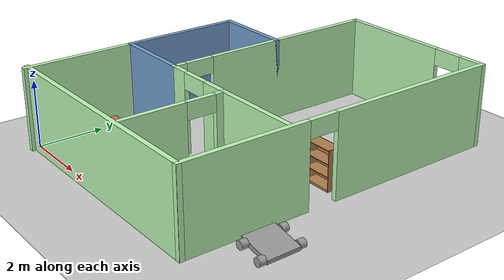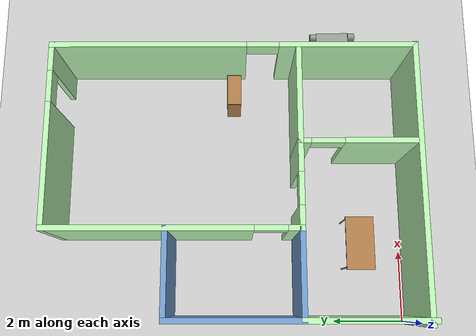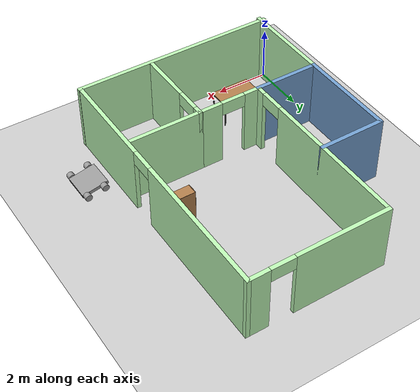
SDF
<sdf version="1.6">
 <world name="default">
  <model name="ground_plane">
   <static>1</static>
   <link name="link">
    <collision name="collision">
     <geometry><plane><normal>0 0 1</normal><size>100 100</size></plane></geometry>
     <surface>
      <contact><collide_bitmask>65535</collide_bitmask></contact>
      <friction><ode><mu>100</mu><mu2>50</mu2></ode></friction>
     </surface>
    </collision>
    <visual name="visual">
     <cast_shadows>0</cast_shadows>
     <geometry><plane><normal>0 0 1</normal><size>100 100</size></plane></geometry>
     <material>
      <script><uri>file://media/materials/scripts/gazebo.material</uri><name>Gazebo/Grey</name></script>
     </material>
    </visual>
   </link>
  </model>
  <model name="table_3">
   <static>1</static>
   <link name="link">
    <collision name="surface">
     <pose>0 0 1 0 -0 0</pose>
     <geometry><box><size>1.5 0.8 0.03</size></box></geometry>
     <surface><friction><ode><mu>0.6</mu><mu2>0.6</mu2></ode></friction></surface>
    </collision>
    <visual name="visual1">
     <pose>0 0 1 0 -0 0</pose>
     <geometry><box><size>1.5 0.8 0.03</size></box></geometry>
     <material>
      <script><uri>file://media/materials/scripts/gazebo.material</uri><name>Gazebo/Wood</name></script>
     </material>
    </visual>
    <collision name="front_left_leg">
     <pose>0.68 0.38 0.5 0 -0 0</pose>
     <geometry><cylinder><radius>0.02</radius><length>1</length></cylinder></geometry>
    </collision>
    <visual name="front_left_leg">
     <pose>0.68 0.38 0.5 0 -0 0</pose>
     <geometry><cylinder><radius>0.02</radius><length>1</length></cylinder></geometry>
     <material>
      <script><uri>file://media/materials/scripts/gazebo.material</uri><name>Gazebo/Grey</name></script>
     </material>
    </visual>
    <collision name="front_right_leg">
     <pose>0.68 -0.38 0.5 0 -0 0</pose>
     <geometry><cylinder><radius>0.02</radius><length>1</length></cylinder></geometry>
    </collision>
    <visual name="front_right_leg">
     <pose>0.68 -0.38 0.5 0 -0 0</pose>
     <geometry><cylinder><radius>0.02</radius><length>1</length></cylinder></geometry>
     <material>
      <script><uri>file://media/materials/scripts/gazebo.material</uri><name>Gazebo/Grey</name></script>
     </material>
    </visual>
    <collision name="back_right_leg">
     <pose>-0.68 -0.38 0.5 0 -0 0</pose>
     <geometry><cylinder><radius>0.02</radius><length>1</length></cylinder></geometry>
    </collision>
    <visual name="back_right_leg">
     <pose>-0.68 -0.38 0.5 0 -0 0</pose>
     <geometry><cylinder><radius>0.02</radius><length>1</length></cylinder></geometry>
     <material>
      <script><uri>file://media/materials/scripts/gazebo.material</uri><name>Gazebo/Grey</name></script>
     </material>
    </visual>
    <collision name="back_left_leg">
     <pose>-0.68 0.38 0.5 0 -0 0</pose>
     <geometry><cylinder><radius>0.02</radius><length>1</length></cylinder></geometry>
    </collision>
    <visual name="back_left_leg">
     <pose>-0.68 0.38 0.5 0 -0 0</pose>
     <geometry><cylinder><radius>0.02</radius><length>1</length></cylinder></geometry>
     <material>
      <script><uri>file://media/materials/scripts/gazebo.material</uri><name>Gazebo/Grey</name></script>
     </material>
    </visual>
   </link>
   <pose>2.18621 1.32854 0 0 -0 0</pose>
  </model>
  <model name="bookshelf">
   <static>1</static>
   <link name="link">
    <inertial><mass>1</mass></inertial>
    <collision name="back">
     <pose>0 0.005 0.6 0 -0 0</pose>
     <geometry><box><size>0.9 0.01 1.2</size></box></geometry>
    </collision>
    <visual name="visual1">
     <pose>0 0.005 0.6 0 -0 0</pose>
     <geometry><box><size>0.9 0.01 1.2</size></box></geometry>
     <material>
      <script><uri>file://media/materials/scripts/gazebo.material</uri><name>Gazebo/Wood</name></script>
     </material>
    </visual>
    <collision name="left_side">
     <pose>0.45 -0.195 0.6 0 -0 0</pose>
     <geometry><box><size>0.02 0.4 1.2</size></box></geometry>
    </collision>
    <visual name="visual2">
     <pose>0.45 -0.195 0.6 0 -0 0</pose>
     <geometry><box><size>0.02 0.4 1.2</size></box></geometry>
     <material>
      <script><uri>file://media/materials/scripts/gazebo.material</uri><name>Gazebo/Wood</name></script>
     </material>
    </visual>
    <collision name="right_side">
     <pose>-0.45 -0.195 0.6 0 -0 0</pose>
     <geometry><box><size>0.02 0.4 1.2</size></box></geometry>
    </collision>
    <visual name="visual3">
     <pose>-0.45 -0.195 0.6 0 -0 0</pose>
     <geometry><box><size>0.02 0.4 1.2</size></box></geometry>
     <material>
      <script><uri>file://media/materials/scripts/gazebo.material</uri><name>Gazebo/Wood</name></script>
     </material>
    </visual>
    <collision name="bottom">
     <pose>0 -0.195 0.03 0 -0 0</pose>
     <geometry><box><size>0.88 0.4 0.06</size></box></geometry>
    </collision>
    <visual name="visual4">
     <pose>0 -0.195 0.03 0 -0 0</pose>
     <geometry><box><size>0.88 0.4 0.06</size></box></geometry>
     <material>
      <script><uri>file://media/materials/scripts/gazebo.material</uri><name>Gazebo/Wood</name></script>
     </material>
    </visual>
    <collision name="top">
     <pose>0 -0.195 1.19 0 -0 0</pose>
     <geometry><box><size>0.88 0.4 0.02</size></box></geometry>
    </collision>
    <visual name="visual5">
     <pose>0 -0.195 1.19 0 -0 0</pose>
     <geometry><box><size>0.88 0.4 0.02</size></box></geometry>
     <material>
      <script><uri>file://media/materials/scripts/gazebo.material</uri><name>Gazebo/Wood</name></script>
     </material>
    </visual>
    <collision name="low_shelf">
     <pose>0 -0.195 0.43 0 -0 0</pose>
     <geometry><box><size>0.88 0.4 0.02</size></box></geometry>
    </collision>
    <visual name="visual6">
     <pose>0 -0.195 0.43 0 -0 0</pose>
     <geometry><box><size>0.88 0.4 0.02</size></box></geometry>
     <material>
      <script><uri>file://media/materials/scripts/gazebo.material</uri><name>Gazebo/Wood</name></script>
     </material>
    </visual>
    <collision name="high_shelf">
     <pose>0 -0.195 0.8 0 -0 0</pose>
     <geometry><box><size>0.88 0.4 0.02</size></box></geometry>
    </collision>
    <visual name="visual7">
     <pose>0 -0.195 0.8 0 -0 0</pose>
     <geometry><box><size>0.88 0.4 0.02</size></box></geometry>
     <material>
      <script><uri>file://media/materials/scripts/gazebo.material</uri><name>Gazebo/Wood</name></script>
     </material>
    </visual>
   </link>
   <pose>6.68171 5.08429 0 0 -0 0</pose>
  </model>
  <model name="robot_base">
   <link name="link_3">
    <inertial>
     <mass>1</mass>
     <inertia><ixx>0.145833</ixx><ixy>0</ixy><ixz>0</ixz><iyy>0.145833</iyy><iyz>0</iyz><izz>0.125</izz></inertia>
    </inertial>
    <pose>0.346702 -0.600418 0 0 -0 0</pose>
    <visual name="visual">
     <pose>0 0 0 1.5708 -0 0</pose>
     <geometry><cylinder><radius>0.125</radius><length>0.2</length></cylinder></geometry>
     <material>
      <lighting>1</lighting>
      <script><uri>file://media/materials/scripts/gazebo.material</uri><name>Gazebo/Grey</name></script>
      <shader type="pixel"><normal_map>__default__</normal_map></shader>
      <ambient>0.3 0.3 0.3 1</ambient>
      <diffuse>0.7 0.7 0.7 1</diffuse>
      <specular>0.01 0.01 0.01 1</specular>
      <emissive>0 0 0 1</emissive>
     </material>
    </visual>
    <collision name="collision">
     <pose>0 0 0 1.5708 -0 0</pose>
     <geometry><cylinder><radius>0.125</radius><length>0.2</length></cylinder></geometry>
     <surface>
      <friction>
       <ode><mu>1</mu><mu2>1</mu2><fdir1>0 0 0</fdir1><slip1>0</slip1><slip2>0</slip2></ode>
       <torsional>
        <coefficient>1</coefficient>
        <patch_radius>0</patch_radius>
        <surface_radius>0</surface_radius>
        <use_patch_radius>1</use_patch_radius>
        <ode><slip>0</slip></ode>
       </torsional>
      </friction>
      <bounce><restitution_coefficient>0</restitution_coefficient><threshold>1e+06</threshold></bounce>
      <contact>
       <collide_without_contact>0</collide_without_contact>
       <collide_without_contact_bitmask>1</collide_without_contact_bitmask>
       <collide_bitmask>1</collide_bitmask>
       <ode>
        <soft_cfm>0</soft_cfm>
        <soft_erp>0.2</soft_erp>
        <kp>1e+13</kp>
        <kd>1</kd>
        <max_vel>0.01</max_vel>
        <min_depth>0</min_depth>
       </ode>
       <bullet>
        <split_impulse>1</split_impulse>
        <split_impulse_penetration_threshold>-0.01</split_impulse_penetration_threshold>
        <soft_cfm>0</soft_cfm>
        <soft_erp>0.2</soft_erp>
        <kp>1e+13</kp>
        <kd>1</kd>
       </bullet>
      </contact>
     </surface>
    </collision>
   </link>
   <link name="link_3_clone">
    <inertial>
     <mass>1</mass>
     <inertia><ixx>0.145833</ixx><ixy>0</ixy><ixz>0</ixz><iyy>0.145833</iyy><iyz>0</iyz><izz>0.125</izz></inertia>
    </inertial>
    <pose>-0.327306 -0.599569 0 0 -0 0</pose>
    <visual name="visual">
     <pose>0 0 0 1.5708 -0 0</pose>
     <geometry><cylinder><radius>0.125</radius><length>0.2</length></cylinder></geometry>
     <material>
      <lighting>1</lighting>
      <script><uri>file://media/materials/scripts/gazebo.material</uri><name>Gazebo/Grey</name></script>
      <shader type="pixel"><normal_map>__default__</normal_map></shader>
      <ambient>0.3 0.3 0.3 1</ambient>
      <diffuse>0.7 0.7 0.7 1</diffuse>
      <specular>0.01 0.01 0.01 1</specular>
      <emissive>0 0 0 1</emissive>
     </material>
    </visual>
    <collision name="collision">
     <pose>0 0 0 1.5708 -0 0</pose>
     <geometry><cylinder><radius>0.125</radius><length>0.2</length></cylinder></geometry>
     <surface>
      <friction>
       <ode><mu>1</mu><mu2>1</mu2><fdir1>0 0 0</fdir1><slip1>0</slip1><slip2>0</slip2></ode>
       <torsional>
        <coefficient>1</coefficient>
        <patch_radius>0</patch_radius>
        <surface_radius>0</surface_radius>
        <use_patch_radius>1</use_patch_radius>
        <ode><slip>0</slip></ode>
       </torsional>
      </friction>
      <bounce><restitution_coefficient>0</restitution_coefficient><threshold>1e+06</threshold></bounce>
      <contact>
       <collide_without_contact>0</collide_without_contact>
       <collide_without_contact_bitmask>1</collide_without_contact_bitmask>
       <collide_bitmask>1</collide_bitmask>
       <ode>
        <soft_cfm>0</soft_cfm>
        <soft_erp>0.2</soft_erp>
        <kp>1e+13</kp>
        <kd>1</kd>
        <max_vel>0.01</max_vel>
        <min_depth>0</min_depth>
       </ode>
       <bullet>
        <split_impulse>1</split_impulse>
        <split_impulse_penetration_threshold>-0.01</split_impulse_penetration_threshold>
        <soft_cfm>0</soft_cfm>
        <soft_erp>0.2</soft_erp>
        <kp>1e+13</kp>
        <kd>1</kd>
       </bullet>
      </contact>
     </surface>
    </collision>
   </link>
   <link name="link_3_clone_0">
    <inertial>
     <mass>1</mass>
     <inertia><ixx>0.145833</ixx><ixy>0</ixy><ixz>0</ixz><iyy>0.145833</iyy><iyz>0</iyz><izz>0.125</izz></inertia>
    </inertial>
    <pose>-0.327588 0.600462 0 0 -0 0</pose>
    <visual name="visual">
     <pose>0 0 0 1.5708 -0 0</pose>
     <geometry><cylinder><radius>0.125</radius><length>0.2</length></cylinder></geometry>
     <material>
      <lighting>1</lighting>
      <script><uri>file://media/materials/scripts/gazebo.material</uri><name>Gazebo/Grey</name></script>
      <shader type="pixel"><normal_map>__default__</normal_map></shader>
      <ambient>0.3 0.3 0.3 1</ambient>
      <diffuse>0.7 0.7 0.7 1</diffuse>
      <specular>0.01 0.01 0.01 1</specular>
      <emissive>0 0 0 1</emissive>
     </material>
    </visual>
    <collision name="collision">
     <pose>0 0 0 1.5708 -0 0</pose>
     <geometry><cylinder><radius>0.125</radius><length>0.2</length></cylinder></geometry>
     <surface>
      <friction>
       <ode><mu>1</mu><mu2>1</mu2><fdir1>0 0 0</fdir1><slip1>0</slip1><slip2>0</slip2></ode>
       <torsional>
        <coefficient>1</coefficient>
        <patch_radius>0</patch_radius>
        <surface_radius>0</surface_radius>
        <use_patch_radius>1</use_patch_radius>
        <ode><slip>0</slip></ode>
       </torsional>
      </friction>
      <bounce><restitution_coefficient>0</restitution_coefficient><threshold>1e+06</threshold></bounce>
      <contact>
       <collide_without_contact>0</collide_without_contact>
       <collide_without_contact_bitmask>1</collide_without_contact_bitmask>
       <collide_bitmask>1</collide_bitmask>
       <ode>
        <soft_cfm>0</soft_cfm>
        <soft_erp>0.2</soft_erp>
        <kp>1e+13</kp>
        <kd>1</kd>
        <max_vel>0.01</max_vel>
        <min_depth>0</min_depth>
       </ode>
       <bullet>
        <split_impulse>1</split_impulse>
        <split_impulse_penetration_threshold>-0.01</split_impulse_penetration_threshold>
        <soft_cfm>0</soft_cfm>
        <soft_erp>0.2</soft_erp>
        <kp>1e+13</kp>
        <kd>1</kd>
       </bullet>
      </contact>
     </surface>
    </collision>
   </link>
   <link name="link_3_clone_1">
    <inertial>
     <mass>1</mass>
     <inertia><ixx>0.145833</ixx><ixy>0</ixy><ixz>0</ixz><iyy>0.145833</iyy><iyz>0</iyz><izz>0.125</izz></inertia>
    </inertial>
    <pose>0.3334 0.598662 0 0 -0 0</pose>
    <visual name="visual">
     <pose>0 0 0 1.5708 -0 0</pose>
     <geometry><cylinder><radius>0.125</radius><length>0.2</length></cylinder></geometry>
     <material>
      <lighting>1</lighting>
      <script><uri>file://media/materials/scripts/gazebo.material</uri><name>Gazebo/Grey</name></script>
      <shader type="pixel"><normal_map>__default__</normal_map></shader>
      <ambient>0.3 0.3 0.3 1</ambient>
      <diffuse>0.7 0.7 0.7 1</diffuse>
      <specular>0.01 0.01 0.01 1</specular>
      <emissive>0 0 0 1</emissive>
     </material>
    </visual>
    <collision name="collision">
     <pose>0 0 0 1.5708 -0 0</pose>
     <geometry><cylinder><radius>0.125</radius><length>0.2</length></cylinder></geometry>
     <surface>
      <friction>
       <ode><mu>1</mu><mu2>1</mu2><fdir1>0 0 0</fdir1><slip1>0</slip1><slip2>0</slip2></ode>
       <torsional>
        <coefficient>1</coefficient>
        <patch_radius>0</patch_radius>
        <surface_radius>0</surface_radius>
        <use_patch_radius>1</use_patch_radius>
        <ode><slip>0</slip></ode>
       </torsional>
      </friction>
      <bounce><restitution_coefficient>0</restitution_coefficient><threshold>1e+06</threshold></bounce>
      <contact>
       <collide_without_contact>0</collide_without_contact>
       <collide_without_contact_bitmask>1</collide_without_contact_bitmask>
       <collide_bitmask>1</collide_bitmask>
       <ode>
        <soft_cfm>0</soft_cfm>
        <soft_erp>0.2</soft_erp>
        <kp>1e+13</kp>
        <kd>1</kd>
        <max_vel>0.01</max_vel>
        <min_depth>0</min_depth>
       </ode>
       <bullet>
        <split_impulse>1</split_impulse>
        <split_impulse_penetration_threshold>-0.01</split_impulse_penetration_threshold>
        <soft_cfm>0</soft_cfm>
        <soft_erp>0.2</soft_erp>
        <kp>1e+13</kp>
        <kd>1</kd>
       </bullet>
      </contact>
     </surface>
    </collision>
   </link>
   <link name="link_4">
    <inertial>
     <mass>1</mass>
     <inertia>
      <ixx>0.166667</ixx>
      <ixy>0</ixy>
      <ixz>0</ixz>
      <iyy>0.166667</iyy>
      <iyz>0</iyz>
      <izz>0.166667</izz>
     </inertia>
    </inertial>
    <pose>-0.025208 0.000862 0 0 -0 0</pose>
    <visual name="visual">
     <geometry><box><size>1 1 0.125</size></box></geometry>
     <material>
      <lighting>1</lighting>
      <script><uri>file://media/materials/scripts/gazebo.material</uri><name>Gazebo/Grey</name></script>
      <shader type="pixel"><normal_map>__default__</normal_map></shader>
      <ambient>0.3 0.3 0.3 1</ambient>
      <diffuse>0.7 0.7 0.7 1</diffuse>
      <specular>0.01 0.01 0.01 1</specular>
      <emissive>0 0 0 1</emissive>
     </material>
    </visual>
    <collision name="collision">
     <geometry><box><size>1 1 0.125</size></box></geometry>
     <surface>
      <friction>
       <ode><mu>1</mu><mu2>1</mu2><fdir1>0 0 0</fdir1><slip1>0</slip1><slip2>0</slip2></ode>
       <torsional>
        <coefficient>1</coefficient>
        <patch_radius>0</patch_radius>
        <surface_radius>0</surface_radius>
        <use_patch_radius>1</use_patch_radius>
        <ode><slip>0</slip></ode>
       </torsional>
      </friction>
      <bounce><restitution_coefficient>0</restitution_coefficient><threshold>1e+06</threshold></bounce>
      <contact>
       <collide_without_contact>0</collide_without_contact>
       <collide_without_contact_bitmask>1</collide_without_contact_bitmask>
       <collide_bitmask>1</collide_bitmask>
       <ode>
        <soft_cfm>0</soft_cfm>
        <soft_erp>0.2</soft_erp>
        <kp>1e+13</kp>
        <kd>1</kd>
        <max_vel>0.01</max_vel>
        <min_depth>0</min_depth>
       </ode>
       <bullet>
        <split_impulse>1</split_impulse>
        <split_impulse_penetration_threshold>-0.01</split_impulse_penetration_threshold>
        <soft_cfm>0</soft_cfm>
        <soft_erp>0.2</soft_erp>
        <kp>1e+13</kp>
        <kd>1</kd>
       </bullet>
      </contact>
     </surface>
    </collision>
   </link>
   <joint name="link_4_JOINT_0" type="revolute">
    <parent>link_4</parent>
    <child>link_3</child>
    <axis>
     <xyz>0 1 0</xyz>
     <use_parent_model_frame>0</use_parent_model_frame>
     <limit>
      <lower>-1.79769e+308</lower>
      <upper>1.79769e+308</upper>
      <effort>-1</effort>
      <velocity>-1</velocity>
     </limit>
     <dynamics>
      <spring_reference>0</spring_reference>
      <spring_stiffness>0</spring_stiffness>
      <damping>0</damping>
     </dynamics>
    </axis>
    <physics>
     <ode><limit><cfm>0</cfm><erp>0.2</erp></limit><suspension><cfm>0</cfm><erp>0.2</erp></suspension></ode>
    </physics>
   </joint>
   <joint name="link_4_JOINT_1" type="revolute">
    <parent>link_4</parent>
    <child>link_3_clone</child>
    <axis>
     <xyz>0 1 0</xyz>
     <use_parent_model_frame>0</use_parent_model_frame>
     <limit>
      <lower>-1.79769e+308</lower>
      <upper>1.79769e+308</upper>
      <effort>-1</effort>
      <velocity>-1</velocity>
     </limit>
     <dynamics>
      <spring_reference>0</spring_reference>
      <spring_stiffness>0</spring_stiffness>
      <damping>0</damping>
     </dynamics>
    </axis>
    <physics>
     <ode><limit><cfm>0</cfm><erp>0.2</erp></limit><suspension><cfm>0</cfm><erp>0.2</erp></suspension></ode>
    </physics>
   </joint>
   <joint name="link_4_JOINT_3" type="revolute">
    <parent>link_4</parent>
    <child>link_3_clone_1</child>
    <axis>
     <xyz>0 1 0</xyz>
     <use_parent_model_frame>0</use_parent_model_frame>
     <limit>
      <lower>-1.79769e+308</lower>
      <upper>1.79769e+308</upper>
      <effort>-1</effort>
      <velocity>-1</velocity>
     </limit>
     <dynamics>
      <spring_reference>0</spring_reference>
      <spring_stiffness>0</spring_stiffness>
      <damping>0</damping>
     </dynamics>
    </axis>
    <physics>
     <ode><limit><cfm>0</cfm><erp>0.2</erp></limit><suspension><cfm>0</cfm><erp>0.2</erp></suspension></ode>
    </physics>
   </joint>
   <joint name="link_4_JOINT_4" type="revolute">
    <parent>link_4</parent>
    <child>link_3_clone_0</child>
    <axis>
     <xyz>0 1 0</xyz>
     <use_parent_model_frame>0</use_parent_model_frame>
     <limit>
      <lower>-1.79769e+308</lower>
      <upper>1.79769e+308</upper>
      <effort>-1</effort>
      <velocity>-1</velocity>
     </limit>
     <dynamics>
      <spring_reference>0</spring_reference>
      <spring_stiffness>0</spring_stiffness>
      <damping>0</damping>
     </dynamics>
    </axis>
    <physics>
     <ode><limit><cfm>0</cfm><erp>0.2</erp></limit><suspension><cfm>0</cfm><erp>0.2</erp></suspension></ode>
    </physics>
   </joint>
   <static>0</static>
   <pose>8.47524 1.77585 0.190915 3e-06 0.19129 0.007312</pose>
  </model>
  <model name="Kanaloa_Lab_v2">
   <pose>3.77022 4.85008 0 0 -0 0</pose>
   <link name="Wall_11">
    <pose>-0.155222 -1.75008 0 0 -0 0</pose>
    <visual name="Wall_11_Visual_0">
     <pose>-0.911457 0 1.25 0 -0 0</pose>
     <geometry><box><size>0.677085 0.15 2.5</size></box></geometry>
     <material>
      <script><uri>file://media/materials/scripts/gazebo.material</uri><name>Gazebo/Grey</name></script>
      <ambient>0.741176 0.972549 0.709804 1</ambient>
     </material>
     <meta><layer>0</layer></meta>
    </visual>
    <collision name="Wall_11_Collision_0">
     <geometry><box><size>0.677085 0.15 2.5</size></box></geometry>
     <pose>-0.911457 0 1.25 0 -0 0</pose>
    </collision>
    <visual name="Wall_11_Visual_1">
     <pose>0.788543 0 1.25 0 -0 0</pose>
     <geometry><box><size>0.922915 0.15 2.5</size></box></geometry>
     <material>
      <script><uri>file://media/materials/scripts/gazebo.material</uri><name>Gazebo/Grey</name></script>
      <ambient>0.741176 0.972549 0.709804 1</ambient>
     </material>
     <meta><layer>0</layer></meta>
    </visual>
    <collision name="Wall_11_Collision_1">
     <geometry><box><size>0.922915 0.15 2.5</size></box></geometry>
     <pose>0.788543 0 1.25 0 -0 0</pose>
    </collision>
    <visual name="Wall_11_Visual_2">
     <pose>-0.122915 0 2.25 0 -0 0</pose>
     <geometry><box><size>0.9 0.15 0.5</size></box></geometry>
     <material>
      <script><uri>file://media/materials/scripts/gazebo.material</uri><name>Gazebo/Grey</name></script>
      <ambient>0.741176 0.972549 0.709804 1</ambient>
     </material>
     <meta><layer>0</layer></meta>
    </visual>
    <collision name="Wall_11_Collision_2">
     <geometry><box><size>0.9 0.15 0.5</size></box></geometry>
     <pose>-0.122915 0 2.25 0 -0 0</pose>
    </collision>
   </link>
   <link name="Wall_12">
    <pose>1.01978 -3.30008 0 0 -0 -1.5708</pose>
    <visual name="Wall_12_Visual_0">
     <pose>-1.44127 0 1.25 0 -0 0</pose>
     <geometry><box><size>0.367459 0.15 2.5</size></box></geometry>
     <material>
      <script><uri>file://media/materials/scripts/gazebo.material</uri><name>Gazebo/Grey</name></script>
      <ambient>0.741176 0.972549 0.709804 1</ambient>
     </material>
     <meta><layer>0</layer></meta>
    </visual>
    <collision name="Wall_12_Collision_0">
     <geometry><box><size>0.367459 0.15 2.5</size></box></geometry>
     <pose>-1.44127 0 1.25 0 -0 0</pose>
    </collision>
    <visual name="Wall_12_Visual_1">
     <pose>0.63373 0 1.25 0 -0 0</pose>
     <geometry><box><size>1.98254 0.15 2.5</size></box></geometry>
     <material>
      <script><uri>file://media/materials/scripts/gazebo.material</uri><name>Gazebo/Grey</name></script>
      <ambient>0.741176 0.972549 0.709804 1</ambient>
     </material>
     <meta><layer>0</layer></meta>
    </visual>
    <collision name="Wall_12_Collision_1">
     <geometry><box><size>1.98254 0.15 2.5</size></box></geometry>
     <pose>0.63373 0 1.25 0 -0 0</pose>
    </collision>
    <visual name="Wall_12_Visual_2">
     <pose>-0.807541 0 2.25 0 -0 0</pose>
     <geometry><box><size>0.9 0.15 0.5</size></box></geometry>
     <material>
      <script><uri>file://media/materials/scripts/gazebo.material</uri><name>Gazebo/Grey</name></script>
      <ambient>0.741176 0.972549 0.709804 1</ambient>
     </material>
     <meta><layer>0</layer></meta>
    </visual>
    <collision name="Wall_12_Collision_2">
     <geometry><box><size>0.9 0.15 0.5</size></box></geometry>
     <pose>-0.807541 0 2.25 0 -0 0</pose>
    </collision>
   </link>
   <link name="Wall_14">
    <collision name="Wall_14_Collision">
     <geometry><box><size>3.75 0.15 2.5</size></box></geometry>
     <pose>0 0 1.25 0 -0 0</pose>
    </collision>
    <visual name="Wall_14_Visual">
     <pose>0 0 1.25 0 -0 0</pose>
     <geometry><box><size>3.75 0.15 2.5</size></box></geometry>
     <material>
      <script><uri>file://media/materials/scripts/gazebo.material</uri><name>Gazebo/Grey</name></script>
      <ambient>0.447059 0.623529 0.811765 1</ambient>
     </material>
     <meta><layer>0</layer></meta>
    </visual>
    <pose>-3.68022 0.049917 0 0 -0 1.5708</pose>
   </link>
   <link name="Wall_15">
    <collision name="Wall_15_Collision">
     <geometry><box><size>2.5 0.15 2.5</size></box></geometry>
     <pose>0 0 1.25 0 -0 0</pose>
    </collision>
    <visual name="Wall_15_Visual">
     <pose>0 0 1.25 0 -0 0</pose>
     <geometry><box><size>2.5 0.15 2.5</size></box></geometry>
     <material>
      <script><uri>file://media/materials/scripts/gazebo.material</uri><name>Gazebo/Grey</name></script>
      <ambient>0.447059 0.623529 0.811765 1</ambient>
     </material>
     <meta><layer>0</layer></meta>
    </visual>
    <pose>-2.50522 1.84992 0 0 -0 0</pose>
   </link>
   <link name="Wall_17">
    <collision name="Wall_17_Collision">
     <geometry><box><size>2.75 0.15 2.5</size></box></geometry>
     <pose>0 0 1.25 0 -0 0</pose>
    </collision>
    <visual name="Wall_17_Visual">
     <pose>0 0 1.25 0 -0 0</pose>
     <geometry><box><size>2.75 0.15 2.5</size></box></geometry>
     <material>
      <script><uri>file://media/materials/scripts/gazebo.material</uri><name>Gazebo/Grey</name></script>
      <ambient>0.741176 0.972549 0.709804 1</ambient>
     </material>
     <meta><layer>0</layer></meta>
    </visual>
    <pose>2.31978 -1.75008 0 0 -0 0</pose>
   </link>
   <link name="Wall_4">
    <collision name="Wall_4_Collision">
     <geometry><box><size>7.71 0.15 2.5</size></box></geometry>
     <pose>0 0 1.25 0 -0 0</pose>
    </collision>
    <visual name="Wall_4_Visual">
     <pose>0 0 1.25 0 -0 0</pose>
     <geometry><box><size>7.71 0.15 2.5</size></box></geometry>
     <material>
      <script><uri>file://media/materials/scripts/gazebo.material</uri><name>Gazebo/Grey</name></script>
      <ambient>0.741176 0.972549 0.709804 1</ambient>
     </material>
     <meta><layer>0</layer></meta>
    </visual>
    <pose>0 -4.98986 0 0 -0 0</pose>
   </link>
   <link name="Wall_5">
    <pose>3.76978 0.055028 0 0 -0 1.5708</pose>
    <visual name="Wall_5_Visual_0">
     <pose>-3.19311 0 1.25 0 -0 0</pose>
     <geometry><box><size>3.85389 0.15 2.5</size></box></geometry>
     <material>
      <script><uri>file://media/materials/scripts/gazebo.material</uri><name>Gazebo/Grey</name></script>
      <ambient>0.741176 0.972549 0.709804 1</ambient>
     </material>
     <meta><layer>0</layer></meta>
    </visual>
    <collision name="Wall_5_Collision_0">
     <geometry><box><size>3.85389 0.15 2.5</size></box></geometry>
     <pose>-3.19311 0 1.25 0 -0 0</pose>
    </collision>
    <visual name="Wall_5_Visual_1">
     <pose>2.37694 0 1.25 0 -0 0</pose>
     <geometry><box><size>5.48622 0.15 2.5</size></box></geometry>
     <material>
      <script><uri>file://media/materials/scripts/gazebo.material</uri><name>Gazebo/Grey</name></script>
      <ambient>0.741176 0.972549 0.709804 1</ambient>
     </material>
     <meta><layer>0</layer></meta>
    </visual>
    <collision name="Wall_5_Collision_1">
     <geometry><box><size>5.48622 0.15 2.5</size></box></geometry>
     <pose>2.37694 0 1.25 0 -0 0</pose>
    </collision>
    <visual name="Wall_5_Visual_2">
     <pose>-0.81617 0 2.25 0 -0 0</pose>
     <geometry><box><size>0.9 0.15 0.5</size></box></geometry>
     <material>
      <script><uri>file://media/materials/scripts/gazebo.material</uri><name>Gazebo/Grey</name></script>
      <ambient>0.741176 0.972549 0.709804 1</ambient>
     </material>
     <meta><layer>0</layer></meta>
    </visual>
    <collision name="Wall_5_Collision_2">
     <geometry><box><size>0.9 0.15 0.5</size></box></geometry>
     <pose>-0.81617 0 2.25 0 -0 0</pose>
    </collision>
   </link>
   <link name="Wall_6">
    <pose>1.21978 5.09992 0 0 -0 3.14159</pose>
    <visual name="Wall_6_Visual_0">
     <pose>-2.20984 0 1.25 0 -0 0</pose>
     <geometry><box><size>0.830327 0.15 2.5</size></box></geometry>
     <material>
      <script><uri>file://media/materials/scripts/gazebo.material</uri><name>Gazebo/Grey</name></script>
      <ambient>0.741176 0.972549 0.709804 1</ambient>
     </material>
     <meta><layer>0</layer></meta>
    </visual>
    <collision name="Wall_6_Collision_0">
     <geometry><box><size>0.830327 0.15 2.5</size></box></geometry>
     <pose>-2.20984 0 1.25 0 -0 0</pose>
    </collision>
    <visual name="Wall_6_Visual_1">
     <pose>0.865164 0 1.25 0 -0 0</pose>
     <geometry><box><size>3.51967 0.15 2.5</size></box></geometry>
     <material>
      <script><uri>file://media/materials/scripts/gazebo.material</uri><name>Gazebo/Grey</name></script>
      <ambient>0.741176 0.972549 0.709804 1</ambient>
     </material>
     <meta><layer>0</layer></meta>
    </visual>
    <collision name="Wall_6_Collision_1">
     <geometry><box><size>3.51967 0.15 2.5</size></box></geometry>
     <pose>0.865164 0 1.25 0 -0 0</pose>
    </collision>
    <visual name="Wall_6_Visual_2">
     <pose>-1.34467 0 2.25 0 -0 0</pose>
     <geometry><box><size>0.9 0.15 0.5</size></box></geometry>
     <material>
      <script><uri>file://media/materials/scripts/gazebo.material</uri><name>Gazebo/Grey</name></script>
      <ambient>0.741176 0.972549 0.709804 1</ambient>
     </material>
     <meta><layer>0</layer></meta>
    </visual>
    <collision name="Wall_6_Collision_2">
     <geometry><box><size>0.9 0.15 0.5</size></box></geometry>
     <pose>-1.34467 0 2.25 0 -0 0</pose>
    </collision>
   </link>
   <link name="Wall_7">
    <pose>-1.33022 1.67492 0 0 -0 -1.5708</pose>
    <visual name="Wall_7_Visual_0">
     <pose>-0.671947 0 1.25 0 -0 0</pose>
     <geometry><box><size>5.65611 0.15 2.5</size></box></geometry>
     <material>
      <script><uri>file://media/materials/scripts/gazebo.material</uri><name>Gazebo/Grey</name></script>
      <ambient>0.741176 0.972549 0.709804 1</ambient>
     </material>
     <meta><layer>0</layer></meta>
    </visual>
    <collision name="Wall_7_Collision_0">
     <geometry><box><size>5.65611 0.15 2.5</size></box></geometry>
     <pose>-0.671947 0 1.25 0 -0 0</pose>
    </collision>
    <visual name="Wall_7_Visual_1">
     <pose>3.27805 0 1.25 0 -0 0</pose>
     <geometry><box><size>0.443893 0.15 2.5</size></box></geometry>
     <material>
      <script><uri>file://media/materials/scripts/gazebo.material</uri><name>Gazebo/Grey</name></script>
      <ambient>0.741176 0.972549 0.709804 1</ambient>
     </material>
     <meta><layer>0</layer></meta>
    </visual>
    <collision name="Wall_7_Collision_1">
     <geometry><box><size>0.443893 0.15 2.5</size></box></geometry>
     <pose>3.27805 0 1.25 0 -0 0</pose>
    </collision>
    <visual name="Wall_7_Visual_2">
     <pose>2.60611 0 2.25 0 -0 0</pose>
     <geometry><box><size>0.9 0.15 0.5</size></box></geometry>
     <material>
      <script><uri>file://media/materials/scripts/gazebo.material</uri><name>Gazebo/Grey</name></script>
      <ambient>0.741176 0.972549 0.709804 1</ambient>
     </material>
     <meta><layer>0</layer></meta>
    </visual>
    <collision name="Wall_7_Collision_2">
     <geometry><box><size>0.9 0.15 0.5</size></box></geometry>
     <pose>2.60611 0 2.25 0 -0 0</pose>
    </collision>
   </link>
   <link name="Wall_8">
    <collision name="Wall_8_Collision">
     <geometry><box><size>2.5 0.15 2.5</size></box></geometry>
     <pose>0 0 1.25 0 -0 0</pose>
    </collision>
    <visual name="Wall_8_Visual">
     <pose>0 0 1.25 0 -0 0</pose>
     <geometry><box><size>2.5 0.15 2.5</size></box></geometry>
     <material>
      <script><uri>file://media/materials/scripts/gazebo.material</uri><name>Gazebo/Grey</name></script>
      <ambient>0.447059 0.623529 0.811765 1</ambient>
     </material>
     <meta><layer>0</layer></meta>
    </visual>
    <pose>-2.50522 -1.75008 0 0 -0 3.14159</pose>
   </link>
   <link name="Wall_9">
    <collision name="Wall_9_Collision">
     <geometry><box><size>3.5 0.15 2.5</size></box></geometry>
     <pose>0 0 1.25 0 -0 0</pose>
    </collision>
    <visual name="Wall_9_Visual">
     <pose>0 0 1.25 0 -0 0</pose>
     <geometry><box><size>3.5 0.15 2.5</size></box></geometry>
     <material>
      <script><uri>file://media/materials/scripts/gazebo.material</uri><name>Gazebo/Grey</name></script>
      <ambient>0.741176 0.972549 0.709804 1</ambient>
     </material>
     <meta><layer>0</layer></meta>
    </visual>
    <pose>-3.68022 -3.42508 0 0 -0 -1.5708</pose>
   </link>
   <static>1</static>
  </model>
 </world>
</sdf>
